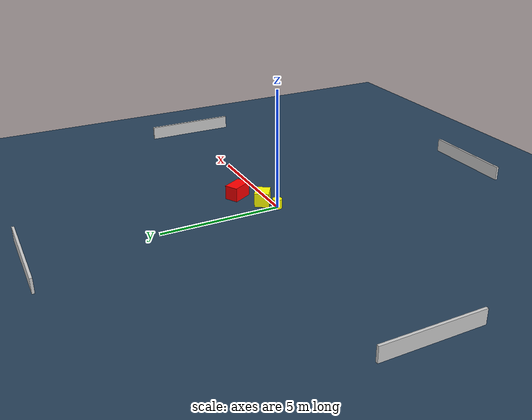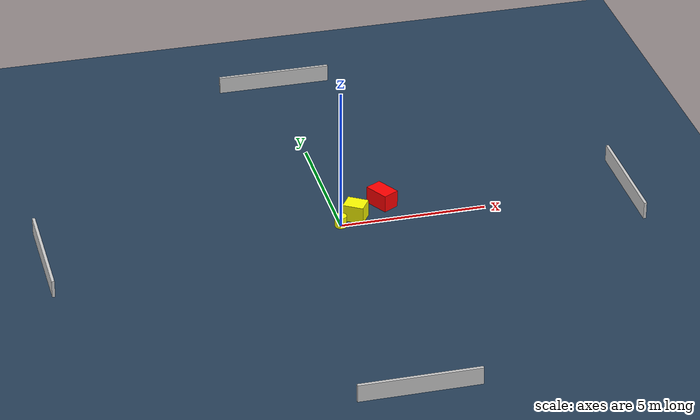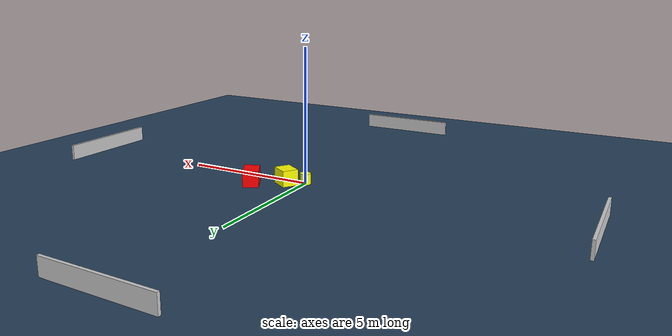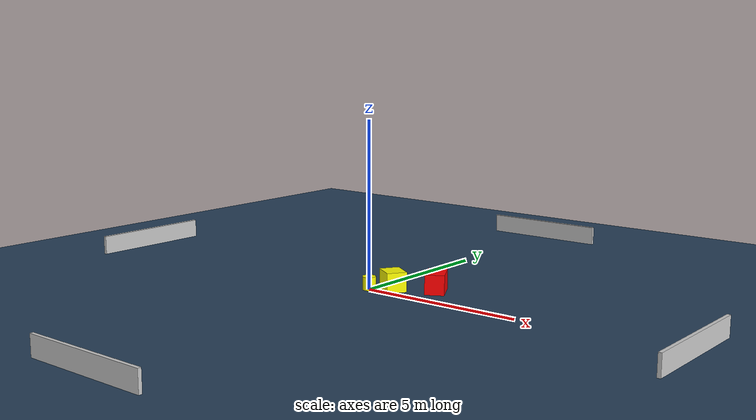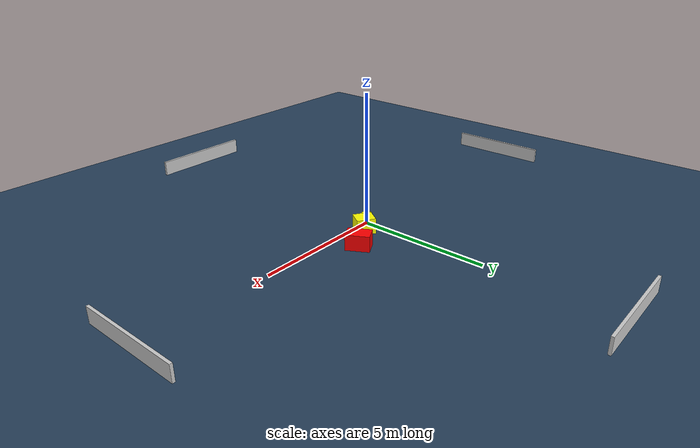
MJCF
<?xml version="1.0" ?>
<mujoco model="generated_environment">
  <option timestep="0.01" integrator="RK4" cone="elliptic"/>
  <default>
    <geom density="1"/>
  </default>
  <asset>
    <texture builtin="gradient" height="3072" name="skybox" rgb1="0.3 0.5 0.7" rgb2="0 0 0" type="skybox" width="512"/>
    <texture builtin="checker" height="300" name="groundplane" rgb1="0.2 0.3 0.4" rgb2="0.1 0.2 0.3" type="2d" width="300"/>
    <material name="groundplane" reflectance="0.2" texrepeat="5 5" texture="groundplane"/>
  </asset>
  <worldbody>
    <light dir="0 0 -1" directional="true" pos="0 0 1.5"/>
    <geom condim="3" friction="0.5 0.005 0.001" material="groundplane" name="floor" pos="0 0 0" size="0 0 0.05" type="plane"/>
    <body name="walls">
      <geom name="wall_1" condim="4" pos="-10.0 0.0 0.3" rgba="0.800000011920929 0.800000011920929 0.800000011920929 1.0" size="0.05 2.0 0.3" type="box"/>
      <geom name="wall_2" condim="4" pos="10.0 0.0 0.3" rgba="0.800000011920929 0.800000011920929 0.800000011920929 1.0" size="0.05 2.0 0.3" type="box"/>
      <geom name="wall_3" condim="4" pos="0.0 -10.0 0.3" rgba="0.800000011920929 0.800000011920929 0.800000011920929 1.0" size="2.0 0.05 0.3" type="box"/>
      <geom name="wall_4" condim="4" pos="0.0 10.0 0.3" rgba="0.800000011920929 0.800000011920929 0.800000011920929 1.0" size="2.0 0.05 0.3" type="box"/>
    </body>
    <body name="robot">
      <joint name="joint_x" type="slide" pos="0 0 0" axis="1 0 0"/>
      <joint name="joint_y" type="slide" pos="0 0 0" axis="0 1 0"/>
      <geom name="robot" type="cylinder" pos="0.0 0.0 0.2" size="0.2 0.2 0.0" mass="5.0" friction="1.0 0.005 0.0001" condim="4" rgba="1.0 1.0 0.0 1.0"/>
    </body>
    <body name="obstacle_1_movable">
      <geom name="obstacle_1_movable" condim="4" pos="0.60321264749391 0.3731598057439052 0.3" euler="0 0 57.45907157257671" friction="0.0 0.005 0.001" rgba="1.0 1.0 0.0 1.0" size="0.3007236328280994 0.3558351999686306 0.3" type="box" mass="0.1"/>
      <joint type="free"/>
    </body>
    <body name="obstacle_2_static">
      <geom name="obstacle_2_static" condim="4" pos="1.6918503076724034 1.0255072963407372 0.3" euler="0 0 29.243241713006142" friction="0.0 0.005 0.001" rgba="1.0 0.0 0.0 1.0" size="0.28948580404291235 0.44354175115033156 0.3" type="box"/>
    </body>
  </worldbody>
  <actuator>
    <motor name="actuator_x" joint="joint_x" gear="1" ctrlrange="-1 1"/>
    <motor name="actuator_y" joint="joint_y" gear="1" ctrlrange="-1 1"/>
  </actuator>
</mujoco>
